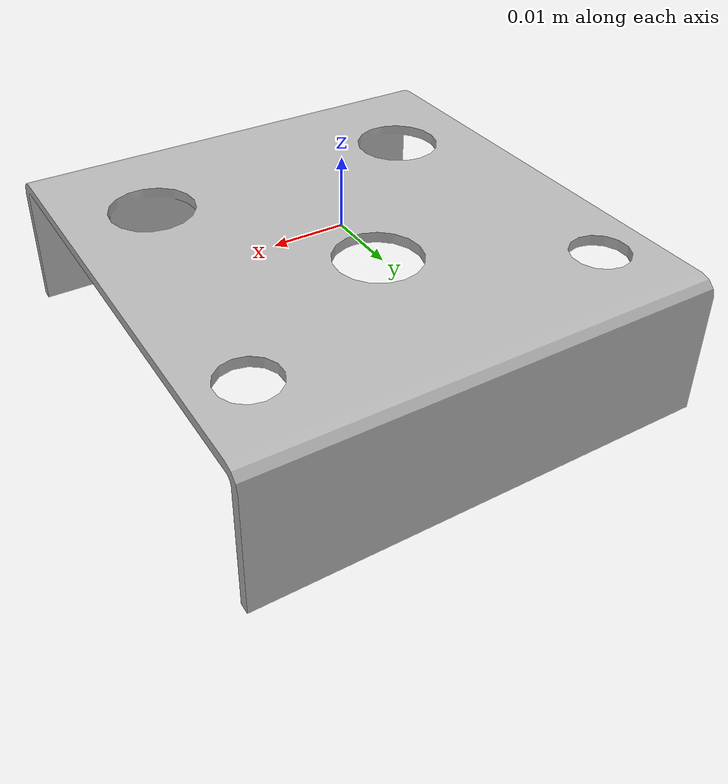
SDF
<?xml version='1.0'?>
<sdf version='1.6'>
  <model name='metalvtwo'>
    <link name='metal_body_link'>
      <pose frame=''>0 0 0 0 -0 0</pose>
      <inertial>
        <pose frame=''>-7.8e-05 -0 -0.00451 0 -0 0</pose>
        <mass>0.0096101</mass>
        <inertia>
          <ixx>3.708e-06</ixx>
          <ixy>1.6702e-21</ixy>
          <ixz>2.8105e-09</ixz>
          <iyy>6.973e-06</iyy>
          <iyz>4.1465e-23</iyz>
          <izz>1.0023e-05</izz>
        </inertia>
      </inertial>
      <self_collide>0</self_collide>
      <enable_wind>0</enable_wind>
      <kinematic>0</kinematic>
      <visual name='metal_body_link_visual'>
        <pose frame=''>0 0 0 0 -0 0</pose>
        <geometry>
          <mesh>
            <scale>1 1 1</scale>
            <uri>model://metalvtwo/meshes/metal_body_link.STL</uri>
          </mesh>
        </geometry>
        <transparency>0</transparency>
        <cast_shadows>1</cast_shadows>
      </visual>
      <collision name='metal_body_link_collision'>
        <laser_retro>0</laser_retro>
        <max_contacts>10</max_contacts>
        <pose frame=''>0 0 0 0 -0 0</pose>
        <geometry>
          <mesh>
            <uri>model://metalvtwo/meshes/metal_body_link.STL</uri>
            <scale>1 1 1</scale>
          </mesh>
        </geometry>
        <surface>
          <friction>
            <ode>
              <mu>1</mu>
              <mu2>1</mu2>
              <fdir1>0 0 0</fdir1>
              <slip1>0</slip1>
              <slip2>0</slip2>
            </ode>
            <torsional>
              <coefficient>1</coefficient>
              <patch_radius>0</patch_radius>
              <surface_radius>0</surface_radius>
              <use_patch_radius>1</use_patch_radius>
              <ode>
                <slip>0</slip>
              </ode>
            </torsional>
          </friction>
          <bounce>
            <restitution_coefficient>0</restitution_coefficient>
            <threshold>1e+06</threshold>
          </bounce>
          <contact>
            <collide_without_contact>0</collide_without_contact>
            <collide_without_contact_bitmask>1</collide_without_contact_bitmask>
            <collide_bitmask>1</collide_bitmask>
            <ode>
              <soft_cfm>0</soft_cfm>
              <soft_erp>0.2</soft_erp>
              <kp>1e+13</kp>
              <kd>1</kd>
              <max_vel>0.01</max_vel>
              <min_depth>0.001</min_depth>
            </ode>
            <bullet>
              <split_impulse>1</split_impulse>
              <split_impulse_penetration_threshold>-0.01</split_impulse_penetration_threshold>
              <soft_cfm>0</soft_cfm>
              <soft_erp>0.2</soft_erp>
              <kp>1e+13</kp>
              <kd>1</kd>
            </bullet>
          </contact>
        </surface>
      </collision>
    </link>
    <static>0</static>
    <allow_auto_disable>1</allow_auto_disable>
  </model>
</sdf>
